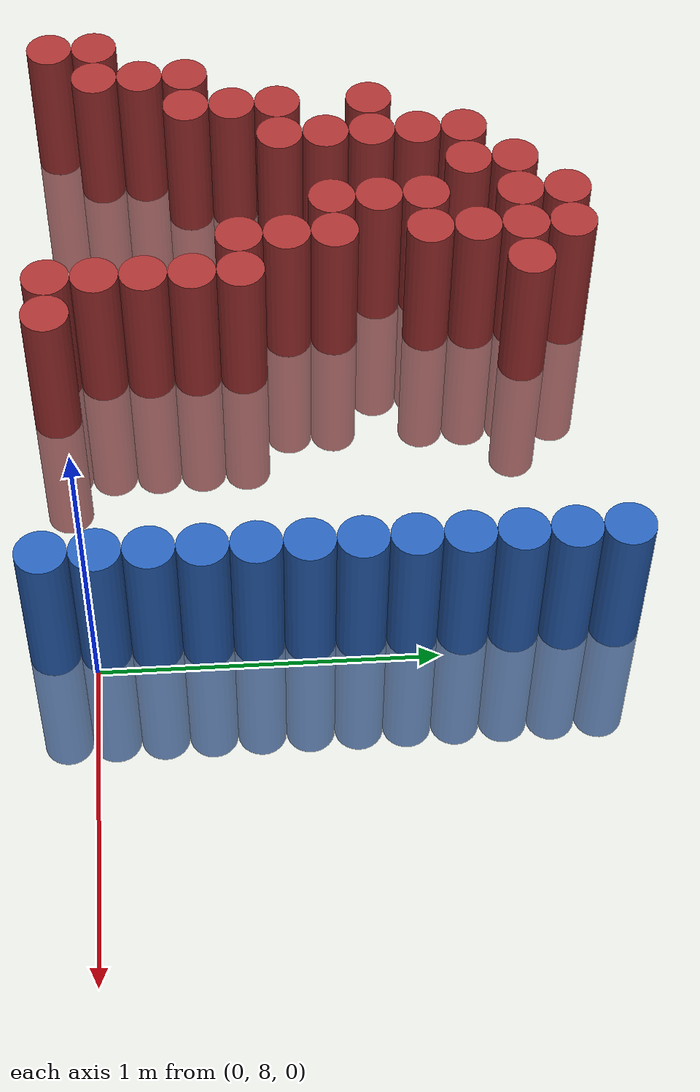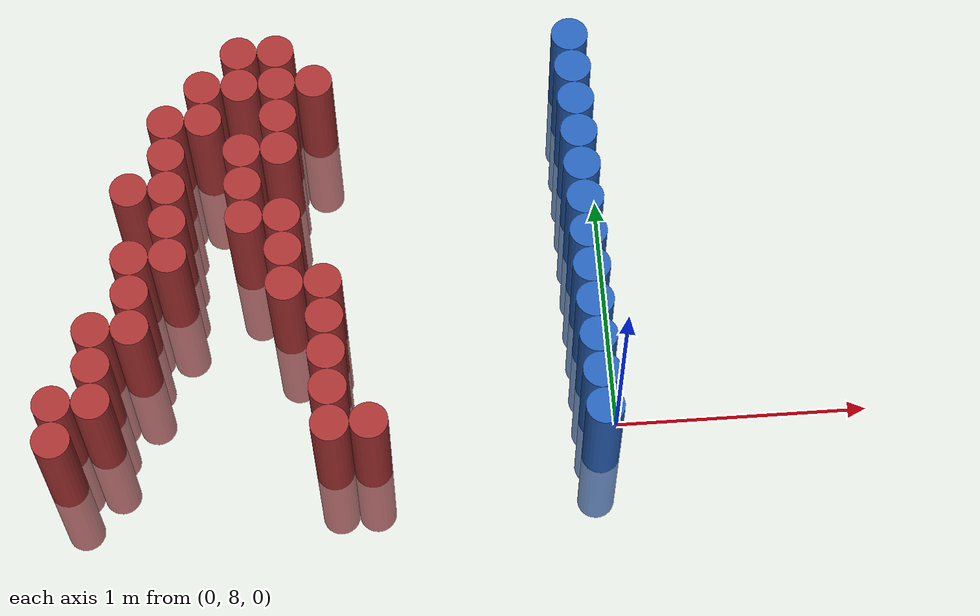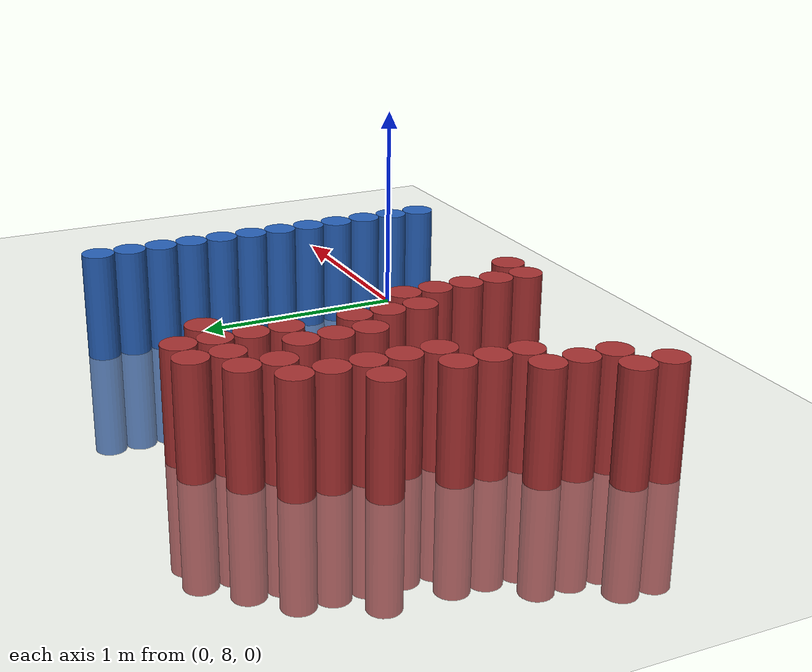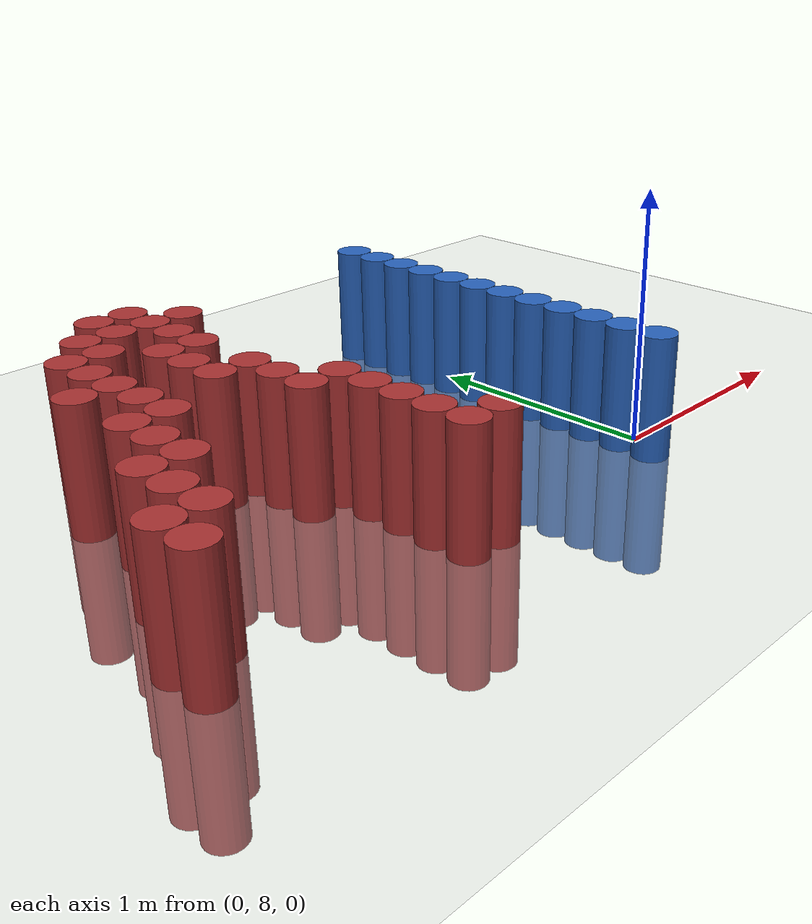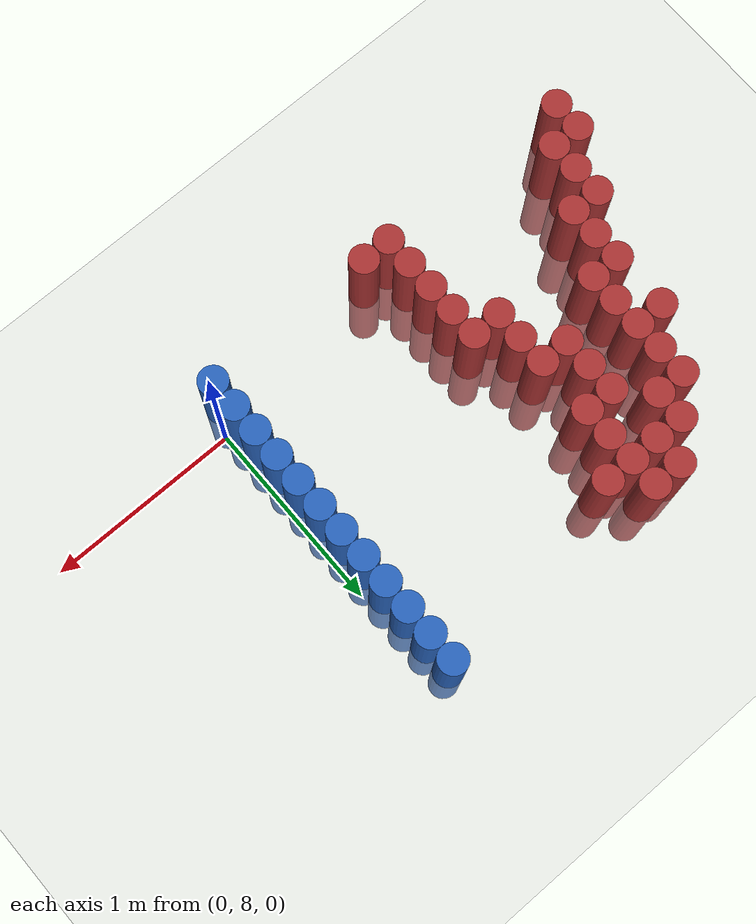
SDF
<sdf version="1.6">
 <world name="default">
  <model name="ground_plane">
   <static>1</static>
   <link name="link">
    <collision name="collision">
     <geometry><plane><normal>0 0 1</normal><size>100 100</size></plane></geometry>
     <surface><friction><ode><mu>100</mu><mu2>50</mu2></ode></friction></surface>
    </collision>
    <visual name="visual">
     <cast_shadows>0</cast_shadows>
     <geometry><plane><normal>0 0 1</normal><size>100 100</size></plane></geometry>
     <material>
      <script><uri>file://media/materials/scripts/gazebo.material</uri><name>Gazebo/Grey</name></script>
     </material>
    </visual>
   </link>
  </model>
  <model name="unit_cylinder_167">
   <static>1</static>
   <pose>-2.175000 7.875000 0.000000 0.000000 0.000000 0.000000</pose>
   <link name="link">
    <inertial>
     <mass>1</mass>
     <inertia><ixx>0.145833</ixx><ixy>0</ixy><ixz>0</ixz><iyy>0.145833</iyy><iyz>0</iyz><izz>0.125</izz></inertia>
    </inertial>
    <collision name="collision">
     <geometry><cylinder><radius>0.075000</radius><length>1</length></cylinder></geometry>
    </collision>
    <visual name="visual">
     <geometry><cylinder><radius>0.075000</radius><length>1</length></cylinder></geometry>
     <material>
      <ambient>0.648000 0.192000 0.192000 1</ambient>
      <diffuse>0.648000 0.192000 0.192000 1</diffuse>
     </material>
     <material>
      <script><name>Gazebo/Grey</name><uri>file://media/materials/scripts/gazebo.material</uri></script>
     </material>
    </visual>
   </link>
  </model>
  <model name="unit_cylinder_168">
   <static>1</static>
   <pose>-2.175000 8.025000 0.000000 0.000000 0.000000 0.000000</pose>
   <link name="link">
    <inertial>
     <mass>1</mass>
     <inertia><ixx>0.145833</ixx><ixy>0</ixy><ixz>0</ixz><iyy>0.145833</iyy><iyz>0</iyz><izz>0.125</izz></inertia>
    </inertial>
    <collision name="collision">
     <geometry><cylinder><radius>0.075000</radius><length>1</length></cylinder></geometry>
    </collision>
    <visual name="visual">
     <geometry><cylinder><radius>0.075000</radius><length>1</length></cylinder></geometry>
     <material>
      <ambient>0.648000 0.192000 0.192000 1</ambient>
      <diffuse>0.648000 0.192000 0.192000 1</diffuse>
     </material>
     <material>
      <script><name>Gazebo/Grey</name><uri>file://media/materials/scripts/gazebo.material</uri></script>
     </material>
    </visual>
   </link>
  </model>
  <model name="unit_cylinder_171">
   <static>1</static>
   <pose>-2.025000 8.025000 0.000000 0.000000 0.000000 0.000000</pose>
   <link name="link">
    <inertial>
     <mass>1</mass>
     <inertia><ixx>0.145833</ixx><ixy>0</ixy><ixz>0</ixz><iyy>0.145833</iyy><iyz>0</iyz><izz>0.125</izz></inertia>
    </inertial>
    <collision name="collision">
     <geometry><cylinder><radius>0.075000</radius><length>1</length></cylinder></geometry>
    </collision>
    <visual name="visual">
     <geometry><cylinder><radius>0.075000</radius><length>1</length></cylinder></geometry>
     <material>
      <ambient>0.648000 0.192000 0.192000 1</ambient>
      <diffuse>0.648000 0.192000 0.192000 1</diffuse>
     </material>
     <material>
      <script><name>Gazebo/Grey</name><uri>file://media/materials/scripts/gazebo.material</uri></script>
     </material>
    </visual>
   </link>
  </model>
  <model name="unit_cylinder_172">
   <static>1</static>
   <pose>-2.025000 8.175000 0.000000 0.000000 0.000000 0.000000</pose>
   <link name="link">
    <inertial>
     <mass>1</mass>
     <inertia><ixx>0.145833</ixx><ixy>0</ixy><ixz>0</ixz><iyy>0.145833</iyy><iyz>0</iyz><izz>0.125</izz></inertia>
    </inertial>
    <collision name="collision">
     <geometry><cylinder><radius>0.075000</radius><length>1</length></cylinder></geometry>
    </collision>
    <visual name="visual">
     <geometry><cylinder><radius>0.075000</radius><length>1</length></cylinder></geometry>
     <material>
      <ambient>0.648000 0.192000 0.192000 1</ambient>
      <diffuse>0.648000 0.192000 0.192000 1</diffuse>
     </material>
     <material>
      <script><name>Gazebo/Grey</name><uri>file://media/materials/scripts/gazebo.material</uri></script>
     </material>
    </visual>
   </link>
  </model>
  <model name="unit_cylinder_173">
   <static>1</static>
   <pose>-2.025000 8.325000 0.000000 0.000000 0.000000 0.000000</pose>
   <link name="link">
    <inertial>
     <mass>1</mass>
     <inertia><ixx>0.145833</ixx><ixy>0</ixy><ixz>0</ixz><iyy>0.145833</iyy><iyz>0</iyz><izz>0.125</izz></inertia>
    </inertial>
    <collision name="collision">
     <geometry><cylinder><radius>0.075000</radius><length>1</length></cylinder></geometry>
    </collision>
    <visual name="visual">
     <geometry><cylinder><radius>0.075000</radius><length>1</length></cylinder></geometry>
     <material>
      <ambient>0.648000 0.192000 0.192000 1</ambient>
      <diffuse>0.648000 0.192000 0.192000 1</diffuse>
     </material>
     <material>
      <script><name>Gazebo/Grey</name><uri>file://media/materials/scripts/gazebo.material</uri></script>
     </material>
    </visual>
   </link>
  </model>
  <model name="unit_cylinder_175">
   <static>1</static>
   <pose>-1.875000 8.325000 0.000000 0.000000 0.000000 0.000000</pose>
   <link name="link">
    <inertial>
     <mass>1</mass>
     <inertia><ixx>0.145833</ixx><ixy>0</ixy><ixz>0</ixz><iyy>0.145833</iyy><iyz>0</iyz><izz>0.125</izz></inertia>
    </inertial>
    <collision name="collision">
     <geometry><cylinder><radius>0.075000</radius><length>1</length></cylinder></geometry>
    </collision>
    <visual name="visual">
     <geometry><cylinder><radius>0.075000</radius><length>1</length></cylinder></geometry>
     <material>
      <ambient>0.648000 0.192000 0.192000 1</ambient>
      <diffuse>0.648000 0.192000 0.192000 1</diffuse>
     </material>
     <material>
      <script><name>Gazebo/Grey</name><uri>file://media/materials/scripts/gazebo.material</uri></script>
     </material>
    </visual>
   </link>
  </model>
  <model name="unit_cylinder_176">
   <static>1</static>
   <pose>-1.875000 8.475000 0.000000 0.000000 0.000000 0.000000</pose>
   <link name="link">
    <inertial>
     <mass>1</mass>
     <inertia><ixx>0.145833</ixx><ixy>0</ixy><ixz>0</ixz><iyy>0.145833</iyy><iyz>0</iyz><izz>0.125</izz></inertia>
    </inertial>
    <collision name="collision">
     <geometry><cylinder><radius>0.075000</radius><length>1</length></cylinder></geometry>
    </collision>
    <visual name="visual">
     <geometry><cylinder><radius>0.075000</radius><length>1</length></cylinder></geometry>
     <material>
      <ambient>0.648000 0.192000 0.192000 1</ambient>
      <diffuse>0.648000 0.192000 0.192000 1</diffuse>
     </material>
     <material>
      <script><name>Gazebo/Grey</name><uri>file://media/materials/scripts/gazebo.material</uri></script>
     </material>
    </visual>
   </link>
  </model>
  <model name="unit_cylinder_177">
   <static>1</static>
   <pose>-1.875000 8.625000 0.000000 0.000000 0.000000 0.000000</pose>
   <link name="link">
    <inertial>
     <mass>1</mass>
     <inertia><ixx>0.145833</ixx><ixy>0</ixy><ixz>0</ixz><iyy>0.145833</iyy><iyz>0</iyz><izz>0.125</izz></inertia>
    </inertial>
    <collision name="collision">
     <geometry><cylinder><radius>0.075000</radius><length>1</length></cylinder></geometry>
    </collision>
    <visual name="visual">
     <geometry><cylinder><radius>0.075000</radius><length>1</length></cylinder></geometry>
     <material>
      <ambient>0.648000 0.192000 0.192000 1</ambient>
      <diffuse>0.648000 0.192000 0.192000 1</diffuse>
     </material>
     <material>
      <script><name>Gazebo/Grey</name><uri>file://media/materials/scripts/gazebo.material</uri></script>
     </material>
    </visual>
   </link>
  </model>
  <model name="unit_cylinder_178">
   <static>1</static>
   <pose>-1.875000 8.925000 0.000000 0.000000 0.000000 0.000000</pose>
   <link name="link">
    <inertial>
     <mass>1</mass>
     <inertia><ixx>0.145833</ixx><ixy>0</ixy><ixz>0</ixz><iyy>0.145833</iyy><iyz>0</iyz><izz>0.125</izz></inertia>
    </inertial>
    <collision name="collision">
     <geometry><cylinder><radius>0.075000</radius><length>1</length></cylinder></geometry>
    </collision>
    <visual name="visual">
     <geometry><cylinder><radius>0.075000</radius><length>1</length></cylinder></geometry>
     <material>
      <ambient>0.648000 0.192000 0.192000 1</ambient>
      <diffuse>0.648000 0.192000 0.192000 1</diffuse>
     </material>
     <material>
      <script><name>Gazebo/Grey</name><uri>file://media/materials/scripts/gazebo.material</uri></script>
     </material>
    </visual>
   </link>
  </model>
  <model name="unit_cylinder_181">
   <static>1</static>
   <pose>-1.725000 8.625000 0.000000 0.000000 0.000000 0.000000</pose>
   <link name="link">
    <inertial>
     <mass>1</mass>
     <inertia><ixx>0.145833</ixx><ixy>0</ixy><ixz>0</ixz><iyy>0.145833</iyy><iyz>0</iyz><izz>0.125</izz></inertia>
    </inertial>
    <collision name="collision">
     <geometry><cylinder><radius>0.075000</radius><length>1</length></cylinder></geometry>
    </collision>
    <visual name="visual">
     <geometry><cylinder><radius>0.075000</radius><length>1</length></cylinder></geometry>
     <material>
      <ambient>0.648000 0.192000 0.192000 1</ambient>
      <diffuse>0.648000 0.192000 0.192000 1</diffuse>
     </material>
     <material>
      <script><name>Gazebo/Grey</name><uri>file://media/materials/scripts/gazebo.material</uri></script>
     </material>
    </visual>
   </link>
  </model>
  <model name="unit_cylinder_182">
   <static>1</static>
   <pose>-1.725000 8.775000 0.000000 0.000000 0.000000 0.000000</pose>
   <link name="link">
    <inertial>
     <mass>1</mass>
     <inertia><ixx>0.145833</ixx><ixy>0</ixy><ixz>0</ixz><iyy>0.145833</iyy><iyz>0</iyz><izz>0.125</izz></inertia>
    </inertial>
    <collision name="collision">
     <geometry><cylinder><radius>0.075000</radius><length>1</length></cylinder></geometry>
    </collision>
    <visual name="visual">
     <geometry><cylinder><radius>0.075000</radius><length>1</length></cylinder></geometry>
     <material>
      <ambient>0.648000 0.192000 0.192000 1</ambient>
      <diffuse>0.648000 0.192000 0.192000 1</diffuse>
     </material>
     <material>
      <script><name>Gazebo/Grey</name><uri>file://media/materials/scripts/gazebo.material</uri></script>
     </material>
    </visual>
   </link>
  </model>
  <model name="unit_cylinder_183">
   <static>1</static>
   <pose>-1.725000 8.925000 0.000000 0.000000 0.000000 0.000000</pose>
   <link name="link">
    <inertial>
     <mass>1</mass>
     <inertia><ixx>0.145833</ixx><ixy>0</ixy><ixz>0</ixz><iyy>0.145833</iyy><iyz>0</iyz><izz>0.125</izz></inertia>
    </inertial>
    <collision name="collision">
     <geometry><cylinder><radius>0.075000</radius><length>1</length></cylinder></geometry>
    </collision>
    <visual name="visual">
     <geometry><cylinder><radius>0.075000</radius><length>1</length></cylinder></geometry>
     <material>
      <ambient>0.648000 0.192000 0.192000 1</ambient>
      <diffuse>0.648000 0.192000 0.192000 1</diffuse>
     </material>
     <material>
      <script><name>Gazebo/Grey</name><uri>file://media/materials/scripts/gazebo.material</uri></script>
     </material>
    </visual>
   </link>
  </model>
  <model name="unit_cylinder_184">
   <static>1</static>
   <pose>-1.725000 9.075000 0.000000 0.000000 0.000000 0.000000</pose>
   <link name="link">
    <inertial>
     <mass>1</mass>
     <inertia><ixx>0.145833</ixx><ixy>0</ixy><ixz>0</ixz><iyy>0.145833</iyy><iyz>0</iyz><izz>0.125</izz></inertia>
    </inertial>
    <collision name="collision">
     <geometry><cylinder><radius>0.075000</radius><length>1</length></cylinder></geometry>
    </collision>
    <visual name="visual">
     <geometry><cylinder><radius>0.075000</radius><length>1</length></cylinder></geometry>
     <material>
      <ambient>0.648000 0.192000 0.192000 1</ambient>
      <diffuse>0.648000 0.192000 0.192000 1</diffuse>
     </material>
     <material>
      <script><name>Gazebo/Grey</name><uri>file://media/materials/scripts/gazebo.material</uri></script>
     </material>
    </visual>
   </link>
  </model>
  <model name="unit_cylinder_185">
   <static>1</static>
   <pose>-1.725000 9.225000 0.000000 0.000000 0.000000 0.000000</pose>
   <link name="link">
    <inertial>
     <mass>1</mass>
     <inertia><ixx>0.145833</ixx><ixy>0</ixy><ixz>0</ixz><iyy>0.145833</iyy><iyz>0</iyz><izz>0.125</izz></inertia>
    </inertial>
    <collision name="collision">
     <geometry><cylinder><radius>0.075000</radius><length>1</length></cylinder></geometry>
    </collision>
    <visual name="visual">
     <geometry><cylinder><radius>0.075000</radius><length>1</length></cylinder></geometry>
     <material>
      <ambient>0.648000 0.192000 0.192000 1</ambient>
      <diffuse>0.648000 0.192000 0.192000 1</diffuse>
     </material>
     <material>
      <script><name>Gazebo/Grey</name><uri>file://media/materials/scripts/gazebo.material</uri></script>
     </material>
    </visual>
   </link>
  </model>
  <model name="unit_cylinder_187">
   <static>1</static>
   <pose>-1.575000 9.225000 0.000000 0.000000 0.000000 0.000000</pose>
   <link name="link">
    <inertial>
     <mass>1</mass>
     <inertia><ixx>0.145833</ixx><ixy>0</ixy><ixz>0</ixz><iyy>0.145833</iyy><iyz>0</iyz><izz>0.125</izz></inertia>
    </inertial>
    <collision name="collision">
     <geometry><cylinder><radius>0.075000</radius><length>1</length></cylinder></geometry>
    </collision>
    <visual name="visual">
     <geometry><cylinder><radius>0.075000</radius><length>1</length></cylinder></geometry>
     <material>
      <ambient>0.648000 0.192000 0.192000 1</ambient>
      <diffuse>0.648000 0.192000 0.192000 1</diffuse>
     </material>
     <material>
      <script><name>Gazebo/Grey</name><uri>file://media/materials/scripts/gazebo.material</uri></script>
     </material>
    </visual>
   </link>
  </model>
  <model name="unit_cylinder_188">
   <static>1</static>
   <pose>-1.575000 9.375000 0.000000 0.000000 0.000000 0.000000</pose>
   <link name="link">
    <inertial>
     <mass>1</mass>
     <inertia><ixx>0.145833</ixx><ixy>0</ixy><ixz>0</ixz><iyy>0.145833</iyy><iyz>0</iyz><izz>0.125</izz></inertia>
    </inertial>
    <collision name="collision">
     <geometry><cylinder><radius>0.075000</radius><length>1</length></cylinder></geometry>
    </collision>
    <visual name="visual">
     <geometry><cylinder><radius>0.075000</radius><length>1</length></cylinder></geometry>
     <material>
      <ambient>0.648000 0.192000 0.192000 1</ambient>
      <diffuse>0.648000 0.192000 0.192000 1</diffuse>
     </material>
     <material>
      <script><name>Gazebo/Grey</name><uri>file://media/materials/scripts/gazebo.material</uri></script>
     </material>
    </visual>
   </link>
  </model>
  <model name="unit_cylinder_190">
   <static>1</static>
   <pose>-1.425000 8.775000 0.000000 0.000000 0.000000 0.000000</pose>
   <link name="link">
    <inertial>
     <mass>1</mass>
     <inertia><ixx>0.145833</ixx><ixy>0</ixy><ixz>0</ixz><iyy>0.145833</iyy><iyz>0</iyz><izz>0.125</izz></inertia>
    </inertial>
    <collision name="collision">
     <geometry><cylinder><radius>0.075000</radius><length>1</length></cylinder></geometry>
    </collision>
    <visual name="visual">
     <geometry><cylinder><radius>0.075000</radius><length>1</length></cylinder></geometry>
     <material>
      <ambient>0.648000 0.192000 0.192000 1</ambient>
      <diffuse>0.648000 0.192000 0.192000 1</diffuse>
     </material>
     <material>
      <script><name>Gazebo/Grey</name><uri>file://media/materials/scripts/gazebo.material</uri></script>
     </material>
    </visual>
   </link>
  </model>
  <model name="unit_cylinder_191">
   <static>1</static>
   <pose>-1.425000 8.925000 0.000000 0.000000 0.000000 0.000000</pose>
   <link name="link">
    <inertial>
     <mass>1</mass>
     <inertia><ixx>0.145833</ixx><ixy>0</ixy><ixz>0</ixz><iyy>0.145833</iyy><iyz>0</iyz><izz>0.125</izz></inertia>
    </inertial>
    <collision name="collision">
     <geometry><cylinder><radius>0.075000</radius><length>1</length></cylinder></geometry>
    </collision>
    <visual name="visual">
     <geometry><cylinder><radius>0.075000</radius><length>1</length></cylinder></geometry>
     <material>
      <ambient>0.648000 0.192000 0.192000 1</ambient>
      <diffuse>0.648000 0.192000 0.192000 1</diffuse>
     </material>
     <material>
      <script><name>Gazebo/Grey</name><uri>file://media/materials/scripts/gazebo.material</uri></script>
     </material>
    </visual>
   </link>
  </model>
  <model name="unit_cylinder_192">
   <static>1</static>
   <pose>-1.425000 9.075000 0.000000 0.000000 0.000000 0.000000</pose>
   <link name="link">
    <inertial>
     <mass>1</mass>
     <inertia><ixx>0.145833</ixx><ixy>0</ixy><ixz>0</ixz><iyy>0.145833</iyy><iyz>0</iyz><izz>0.125</izz></inertia>
    </inertial>
    <collision name="collision">
     <geometry><cylinder><radius>0.075000</radius><length>1</length></cylinder></geometry>
    </collision>
    <visual name="visual">
     <geometry><cylinder><radius>0.075000</radius><length>1</length></cylinder></geometry>
     <material>
      <ambient>0.648000 0.192000 0.192000 1</ambient>
      <diffuse>0.648000 0.192000 0.192000 1</diffuse>
     </material>
     <material>
      <script><name>Gazebo/Grey</name><uri>file://media/materials/scripts/gazebo.material</uri></script>
     </material>
    </visual>
   </link>
  </model>
  <model name="unit_cylinder_193">
   <static>1</static>
   <pose>-1.425000 9.375000 0.000000 0.000000 0.000000 0.000000</pose>
   <link name="link">
    <inertial>
     <mass>1</mass>
     <inertia><ixx>0.145833</ixx><ixy>0</ixy><ixz>0</ixz><iyy>0.145833</iyy><iyz>0</iyz><izz>0.125</izz></inertia>
    </inertial>
    <collision name="collision">
     <geometry><cylinder><radius>0.075000</radius><length>1</length></cylinder></geometry>
    </collision>
    <visual name="visual">
     <geometry><cylinder><radius>0.075000</radius><length>1</length></cylinder></geometry>
     <material>
      <ambient>0.648000 0.192000 0.192000 1</ambient>
      <diffuse>0.648000 0.192000 0.192000 1</diffuse>
     </material>
     <material>
      <script><name>Gazebo/Grey</name><uri>file://media/materials/scripts/gazebo.material</uri></script>
     </material>
    </visual>
   </link>
  </model>
  <model name="unit_cylinder_194">
   <static>1</static>
   <pose>-1.425000 9.525000 0.000000 0.000000 0.000000 0.000000</pose>
   <link name="link">
    <inertial>
     <mass>1</mass>
     <inertia><ixx>0.145833</ixx><ixy>0</ixy><ixz>0</ixz><iyy>0.145833</iyy><iyz>0</iyz><izz>0.125</izz></inertia>
    </inertial>
    <collision name="collision">
     <geometry><cylinder><radius>0.075000</radius><length>1</length></cylinder></geometry>
    </collision>
    <visual name="visual">
     <geometry><cylinder><radius>0.075000</radius><length>1</length></cylinder></geometry>
     <material>
      <ambient>0.648000 0.192000 0.192000 1</ambient>
      <diffuse>0.648000 0.192000 0.192000 1</diffuse>
     </material>
     <material>
      <script><name>Gazebo/Grey</name><uri>file://media/materials/scripts/gazebo.material</uri></script>
     </material>
    </visual>
   </link>
  </model>
  <model name="unit_cylinder_197">
   <static>1</static>
   <pose>-1.275000 8.475000 0.000000 0.000000 0.000000 0.000000</pose>
   <link name="link">
    <inertial>
     <mass>1</mass>
     <inertia><ixx>0.145833</ixx><ixy>0</ixy><ixz>0</ixz><iyy>0.145833</iyy><iyz>0</iyz><izz>0.125</izz></inertia>
    </inertial>
    <collision name="collision">
     <geometry><cylinder><radius>0.075000</radius><length>1</length></cylinder></geometry>
    </collision>
    <visual name="visual">
     <geometry><cylinder><radius>0.075000</radius><length>1</length></cylinder></geometry>
     <material>
      <ambient>0.648000 0.192000 0.192000 1</ambient>
      <diffuse>0.648000 0.192000 0.192000 1</diffuse>
     </material>
     <material>
      <script><name>Gazebo/Grey</name><uri>file://media/materials/scripts/gazebo.material</uri></script>
     </material>
    </visual>
   </link>
  </model>
  <model name="unit_cylinder_198">
   <static>1</static>
   <pose>-1.275000 8.625000 0.000000 0.000000 0.000000 0.000000</pose>
   <link name="link">
    <inertial>
     <mass>1</mass>
     <inertia><ixx>0.145833</ixx><ixy>0</ixy><ixz>0</ixz><iyy>0.145833</iyy><iyz>0</iyz><izz>0.125</izz></inertia>
    </inertial>
    <collision name="collision">
     <geometry><cylinder><radius>0.075000</radius><length>1</length></cylinder></geometry>
    </collision>
    <visual name="visual">
     <geometry><cylinder><radius>0.075000</radius><length>1</length></cylinder></geometry>
     <material>
      <ambient>0.648000 0.192000 0.192000 1</ambient>
      <diffuse>0.648000 0.192000 0.192000 1</diffuse>
     </material>
     <material>
      <script><name>Gazebo/Grey</name><uri>file://media/materials/scripts/gazebo.material</uri></script>
     </material>
    </visual>
   </link>
  </model>
  <model name="unit_cylinder_199">
   <static>1</static>
   <pose>-1.275000 8.775000 0.000000 0.000000 0.000000 0.000000</pose>
   <link name="link">
    <inertial>
     <mass>1</mass>
     <inertia><ixx>0.145833</ixx><ixy>0</ixy><ixz>0</ixz><iyy>0.145833</iyy><iyz>0</iyz><izz>0.125</izz></inertia>
    </inertial>
    <collision name="collision">
     <geometry><cylinder><radius>0.075000</radius><length>1</length></cylinder></geometry>
    </collision>
    <visual name="visual">
     <geometry><cylinder><radius>0.075000</radius><length>1</length></cylinder></geometry>
     <material>
      <ambient>0.648000 0.192000 0.192000 1</ambient>
      <diffuse>0.648000 0.192000 0.192000 1</diffuse>
     </material>
     <material>
      <script><name>Gazebo/Grey</name><uri>file://media/materials/scripts/gazebo.material</uri></script>
     </material>
    </visual>
   </link>
  </model>
  <model name="unit_cylinder_200">
   <static>1</static>
   <pose>-1.275000 9.075000 0.000000 0.000000 0.000000 0.000000</pose>
   <link name="link">
    <inertial>
     <mass>1</mass>
     <inertia><ixx>0.145833</ixx><ixy>0</ixy><ixz>0</ixz><iyy>0.145833</iyy><iyz>0</iyz><izz>0.125</izz></inertia>
    </inertial>
    <collision name="collision">
     <geometry><cylinder><radius>0.075000</radius><length>1</length></cylinder></geometry>
    </collision>
    <visual name="visual">
     <geometry><cylinder><radius>0.075000</radius><length>1</length></cylinder></geometry>
     <material>
      <ambient>0.648000 0.192000 0.192000 1</ambient>
      <diffuse>0.648000 0.192000 0.192000 1</diffuse>
     </material>
     <material>
      <script><name>Gazebo/Grey</name><uri>file://media/materials/scripts/gazebo.material</uri></script>
     </material>
    </visual>
   </link>
  </model>
  <model name="unit_cylinder_201">
   <static>1</static>
   <pose>-1.275000 9.225000 0.000000 0.000000 0.000000 0.000000</pose>
   <link name="link">
    <inertial>
     <mass>1</mass>
     <inertia><ixx>0.145833</ixx><ixy>0</ixy><ixz>0</ixz><iyy>0.145833</iyy><iyz>0</iyz><izz>0.125</izz></inertia>
    </inertial>
    <collision name="collision">
     <geometry><cylinder><radius>0.075000</radius><length>1</length></cylinder></geometry>
    </collision>
    <visual name="visual">
     <geometry><cylinder><radius>0.075000</radius><length>1</length></cylinder></geometry>
     <material>
      <ambient>0.648000 0.192000 0.192000 1</ambient>
      <diffuse>0.648000 0.192000 0.192000 1</diffuse>
     </material>
     <material>
      <script><name>Gazebo/Grey</name><uri>file://media/materials/scripts/gazebo.material</uri></script>
     </material>
    </visual>
   </link>
  </model>
  <model name="unit_cylinder_202">
   <static>1</static>
   <pose>-1.275000 9.375000 0.000000 0.000000 0.000000 0.000000</pose>
   <link name="link">
    <inertial>
     <mass>1</mass>
     <inertia><ixx>0.145833</ixx><ixy>0</ixy><ixz>0</ixz><iyy>0.145833</iyy><iyz>0</iyz><izz>0.125</izz></inertia>
    </inertial>
    <collision name="collision">
     <geometry><cylinder><radius>0.075000</radius><length>1</length></cylinder></geometry>
    </collision>
    <visual name="visual">
     <geometry><cylinder><radius>0.075000</radius><length>1</length></cylinder></geometry>
     <material>
      <ambient>0.648000 0.192000 0.192000 1</ambient>
      <diffuse>0.648000 0.192000 0.192000 1</diffuse>
     </material>
     <material>
      <script><name>Gazebo/Grey</name><uri>file://media/materials/scripts/gazebo.material</uri></script>
     </material>
    </visual>
   </link>
  </model>
  <model name="unit_cylinder_203">
   <static>1</static>
   <pose>-1.275000 9.525000 0.000000 0.000000 0.000000 0.000000</pose>
   <link name="link">
    <inertial>
     <mass>1</mass>
     <inertia><ixx>0.145833</ixx><ixy>0</ixy><ixz>0</ixz><iyy>0.145833</iyy><iyz>0</iyz><izz>0.125</izz></inertia>
    </inertial>
    <collision name="collision">
     <geometry><cylinder><radius>0.075000</radius><length>1</length></cylinder></geometry>
    </collision>
    <visual name="visual">
     <geometry><cylinder><radius>0.075000</radius><length>1</length></cylinder></geometry>
     <material>
      <ambient>0.648000 0.192000 0.192000 1</ambient>
      <diffuse>0.648000 0.192000 0.192000 1</diffuse>
     </material>
     <material>
      <script><name>Gazebo/Grey</name><uri>file://media/materials/scripts/gazebo.material</uri></script>
     </material>
    </visual>
   </link>
  </model>
  <model name="unit_cylinder_208">
   <static>1</static>
   <pose>-1.125000 7.875000 0.000000 0.000000 0.000000 0.000000</pose>
   <link name="link">
    <inertial>
     <mass>1</mass>
     <inertia><ixx>0.145833</ixx><ixy>0</ixy><ixz>0</ixz><iyy>0.145833</iyy><iyz>0</iyz><izz>0.125</izz></inertia>
    </inertial>
    <collision name="collision">
     <geometry><cylinder><radius>0.075000</radius><length>1</length></cylinder></geometry>
    </collision>
    <visual name="visual">
     <geometry><cylinder><radius>0.075000</radius><length>1</length></cylinder></geometry>
     <material>
      <ambient>0.648000 0.192000 0.192000 1</ambient>
      <diffuse>0.648000 0.192000 0.192000 1</diffuse>
     </material>
     <material>
      <script><name>Gazebo/Grey</name><uri>file://media/materials/scripts/gazebo.material</uri></script>
     </material>
    </visual>
   </link>
  </model>
  <model name="unit_cylinder_209">
   <static>1</static>
   <pose>-1.125000 8.025000 0.000000 0.000000 0.000000 0.000000</pose>
   <link name="link">
    <inertial>
     <mass>1</mass>
     <inertia><ixx>0.145833</ixx><ixy>0</ixy><ixz>0</ixz><iyy>0.145833</iyy><iyz>0</iyz><izz>0.125</izz></inertia>
    </inertial>
    <collision name="collision">
     <geometry><cylinder><radius>0.075000</radius><length>1</length></cylinder></geometry>
    </collision>
    <visual name="visual">
     <geometry><cylinder><radius>0.075000</radius><length>1</length></cylinder></geometry>
     <material>
      <ambient>0.648000 0.192000 0.192000 1</ambient>
      <diffuse>0.648000 0.192000 0.192000 1</diffuse>
     </material>
     <material>
      <script><name>Gazebo/Grey</name><uri>file://media/materials/scripts/gazebo.material</uri></script>
     </material>
    </visual>
   </link>
  </model>
  <model name="unit_cylinder_210">
   <static>1</static>
   <pose>-1.125000 8.175000 0.000000 0.000000 0.000000 0.000000</pose>
   <link name="link">
    <inertial>
     <mass>1</mass>
     <inertia><ixx>0.145833</ixx><ixy>0</ixy><ixz>0</ixz><iyy>0.145833</iyy><iyz>0</iyz><izz>0.125</izz></inertia>
    </inertial>
    <collision name="collision">
     <geometry><cylinder><radius>0.075000</radius><length>1</length></cylinder></geometry>
    </collision>
    <visual name="visual">
     <geometry><cylinder><radius>0.075000</radius><length>1</length></cylinder></geometry>
     <material>
      <ambient>0.648000 0.192000 0.192000 1</ambient>
      <diffuse>0.648000 0.192000 0.192000 1</diffuse>
     </material>
     <material>
      <script><name>Gazebo/Grey</name><uri>file://media/materials/scripts/gazebo.material</uri></script>
     </material>
    </visual>
   </link>
  </model>
  <model name="unit_cylinder_211">
   <static>1</static>
   <pose>-1.125000 8.325000 0.000000 0.000000 0.000000 0.000000</pose>
   <link name="link">
    <inertial>
     <mass>1</mass>
     <inertia><ixx>0.145833</ixx><ixy>0</ixy><ixz>0</ixz><iyy>0.145833</iyy><iyz>0</iyz><izz>0.125</izz></inertia>
    </inertial>
    <collision name="collision">
     <geometry><cylinder><radius>0.075000</radius><length>1</length></cylinder></geometry>
    </collision>
    <visual name="visual">
     <geometry><cylinder><radius>0.075000</radius><length>1</length></cylinder></geometry>
     <material>
      <ambient>0.648000 0.192000 0.192000 1</ambient>
      <diffuse>0.648000 0.192000 0.192000 1</diffuse>
     </material>
     <material>
      <script><name>Gazebo/Grey</name><uri>file://media/materials/scripts/gazebo.material</uri></script>
     </material>
    </visual>
   </link>
  </model>
  <model name="unit_cylinder_212">
   <static>1</static>
   <pose>-1.125000 8.475000 0.000000 0.000000 0.000000 0.000000</pose>
   <link name="link">
    <inertial>
     <mass>1</mass>
     <inertia><ixx>0.145833</ixx><ixy>0</ixy><ixz>0</ixz><iyy>0.145833</iyy><iyz>0</iyz><izz>0.125</izz></inertia>
    </inertial>
    <collision name="collision">
     <geometry><cylinder><radius>0.075000</radius><length>1</length></cylinder></geometry>
    </collision>
    <visual name="visual">
     <geometry><cylinder><radius>0.075000</radius><length>1</length></cylinder></geometry>
     <material>
      <ambient>0.648000 0.192000 0.192000 1</ambient>
      <diffuse>0.648000 0.192000 0.192000 1</diffuse>
     </material>
     <material>
      <script><name>Gazebo/Grey</name><uri>file://media/materials/scripts/gazebo.material</uri></script>
     </material>
    </visual>
   </link>
  </model>
  <model name="unit_cylinder_213">
   <static>1</static>
   <pose>-1.125000 9.375000 0.000000 0.000000 0.000000 0.000000</pose>
   <link name="link">
    <inertial>
     <mass>1</mass>
     <inertia><ixx>0.145833</ixx><ixy>0</ixy><ixz>0</ixz><iyy>0.145833</iyy><iyz>0</iyz><izz>0.125</izz></inertia>
    </inertial>
    <collision name="collision">
     <geometry><cylinder><radius>0.075000</radius><length>1</length></cylinder></geometry>
    </collision>
    <visual name="visual">
     <geometry><cylinder><radius>0.075000</radius><length>1</length></cylinder></geometry>
     <material>
      <ambient>0.648000 0.192000 0.192000 1</ambient>
      <diffuse>0.648000 0.192000 0.192000 1</diffuse>
     </material>
     <material>
      <script><name>Gazebo/Grey</name><uri>file://media/materials/scripts/gazebo.material</uri></script>
     </material>
    </visual>
   </link>
  </model>
  <model name="unit_cylinder_216">
   <static>1</static>
   <pose>-0.975000 7.875000 0.000000 0.000000 0.000000 0.000000</pose>
   <link name="link">
    <inertial>
     <mass>1</mass>
     <inertia><ixx>0.145833</ixx><ixy>0</ixy><ixz>0</ixz><iyy>0.145833</iyy><iyz>0</iyz><izz>0.125</izz></inertia>
    </inertial>
    <collision name="collision">
     <geometry><cylinder><radius>0.075000</radius><length>1</length></cylinder></geometry>
    </collision>
    <visual name="visual">
     <geometry><cylinder><radius>0.075000</radius><length>1</length></cylinder></geometry>
     <material>
      <ambient>0.648000 0.192000 0.192000 1</ambient>
      <diffuse>0.648000 0.192000 0.192000 1</diffuse>
     </material>
     <material>
      <script><name>Gazebo/Grey</name><uri>file://media/materials/scripts/gazebo.material</uri></script>
     </material>
    </visual>
   </link>
  </model>
  <model name="unit_cylinder_266">
   <static>1</static>
   <pose>-0.075000 7.875000 0.000000 0.000000 0.000000 0.000000</pose>
   <link name="link">
    <inertial>
     <mass>1</mass>
     <inertia><ixx>0.145833</ixx><ixy>0</ixy><ixz>0</ixz><iyy>0.145833</iyy><iyz>0</iyz><izz>0.125</izz></inertia>
    </inertial>
    <collision name="collision">
     <geometry><cylinder><radius>0.075000</radius><length>1</length></cylinder></geometry>
    </collision>
    <visual name="visual">
     <geometry><cylinder><radius>0.075000</radius><length>1</length></cylinder></geometry>
     <material>
      <ambient>0.152000 0.379000 0.720000 1</ambient>
      <diffuse>0.152000 0.379000 0.720000 1</diffuse>
     </material>
     <material>
      <script><name>Gazebo/Grey</name><uri>file://media/materials/scripts/gazebo.material</uri></script>
     </material>
    </visual>
   </link>
  </model>
  <model name="unit_cylinder_267">
   <static>1</static>
   <pose>-0.075000 8.025000 0.000000 0.000000 0.000000 0.000000</pose>
   <link name="link">
    <inertial>
     <mass>1</mass>
     <inertia><ixx>0.145833</ixx><ixy>0</ixy><ixz>0</ixz><iyy>0.145833</iyy><iyz>0</iyz><izz>0.125</izz></inertia>
    </inertial>
    <collision name="collision">
     <geometry><cylinder><radius>0.075000</radius><length>1</length></cylinder></geometry>
    </collision>
    <visual name="visual">
     <geometry><cylinder><radius>0.075000</radius><length>1</length></cylinder></geometry>
     <material>
      <ambient>0.152000 0.379000 0.720000 1</ambient>
      <diffuse>0.152000 0.379000 0.720000 1</diffuse>
     </material>
     <material>
      <script><name>Gazebo/Grey</name><uri>file://media/materials/scripts/gazebo.material</uri></script>
     </material>
    </visual>
   </link>
  </model>
  <model name="unit_cylinder_268">
   <static>1</static>
   <pose>-0.075000 8.175000 0.000000 0.000000 0.000000 0.000000</pose>
   <link name="link">
    <inertial>
     <mass>1</mass>
     <inertia><ixx>0.145833</ixx><ixy>0</ixy><ixz>0</ixz><iyy>0.145833</iyy><iyz>0</iyz><izz>0.125</izz></inertia>
    </inertial>
    <collision name="collision">
     <geometry><cylinder><radius>0.075000</radius><length>1</length></cylinder></geometry>
    </collision>
    <visual name="visual">
     <geometry><cylinder><radius>0.075000</radius><length>1</length></cylinder></geometry>
     <material>
      <ambient>0.152000 0.379000 0.720000 1</ambient>
      <diffuse>0.152000 0.379000 0.720000 1</diffuse>
     </material>
     <material>
      <script><name>Gazebo/Grey</name><uri>file://media/materials/scripts/gazebo.material</uri></script>
     </material>
    </visual>
   </link>
  </model>
  <model name="unit_cylinder_269">
   <static>1</static>
   <pose>-0.075000 8.325000 0.000000 0.000000 0.000000 0.000000</pose>
   <link name="link">
    <inertial>
     <mass>1</mass>
     <inertia><ixx>0.145833</ixx><ixy>0</ixy><ixz>0</ixz><iyy>0.145833</iyy><iyz>0</iyz><izz>0.125</izz></inertia>
    </inertial>
    <collision name="collision">
     <geometry><cylinder><radius>0.075000</radius><length>1</length></cylinder></geometry>
    </collision>
    <visual name="visual">
     <geometry><cylinder><radius>0.075000</radius><length>1</length></cylinder></geometry>
     <material>
      <ambient>0.152000 0.379000 0.720000 1</ambient>
      <diffuse>0.152000 0.379000 0.720000 1</diffuse>
     </material>
     <material>
      <script><name>Gazebo/Grey</name><uri>file://media/materials/scripts/gazebo.material</uri></script>
     </material>
    </visual>
   </link>
  </model>
  <model name="unit_cylinder_270">
   <static>1</static>
   <pose>-0.075000 8.475000 0.000000 0.000000 0.000000 0.000000</pose>
   <link name="link">
    <inertial>
     <mass>1</mass>
     <inertia><ixx>0.145833</ixx><ixy>0</ixy><ixz>0</ixz><iyy>0.145833</iyy><iyz>0</iyz><izz>0.125</izz></inertia>
    </inertial>
    <collision name="collision">
     <geometry><cylinder><radius>0.075000</radius><length>1</length></cylinder></geometry>
    </collision>
    <visual name="visual">
     <geometry><cylinder><radius>0.075000</radius><length>1</length></cylinder></geometry>
     <material>
      <ambient>0.152000 0.379000 0.720000 1</ambient>
      <diffuse>0.152000 0.379000 0.720000 1</diffuse>
     </material>
     <material>
      <script><name>Gazebo/Grey</name><uri>file://media/materials/scripts/gazebo.material</uri></script>
     </material>
    </visual>
   </link>
  </model>
  <model name="unit_cylinder_271">
   <static>1</static>
   <pose>-0.075000 8.625000 0.000000 0.000000 0.000000 0.000000</pose>
   <link name="link">
    <inertial>
     <mass>1</mass>
     <inertia><ixx>0.145833</ixx><ixy>0</ixy><ixz>0</ixz><iyy>0.145833</iyy><iyz>0</iyz><izz>0.125</izz></inertia>
    </inertial>
    <collision name="collision">
     <geometry><cylinder><radius>0.075000</radius><length>1</length></cylinder></geometry>
    </collision>
    <visual name="visual">
     <geometry><cylinder><radius>0.075000</radius><length>1</length></cylinder></geometry>
     <material>
      <ambient>0.152000 0.379000 0.720000 1</ambient>
      <diffuse>0.152000 0.379000 0.720000 1</diffuse>
     </material>
     <material>
      <script><name>Gazebo/Grey</name><uri>file://media/materials/scripts/gazebo.material</uri></script>
     </material>
    </visual>
   </link>
  </model>
  <model name="unit_cylinder_272">
   <static>1</static>
   <pose>-0.075000 8.775000 0.000000 0.000000 0.000000 0.000000</pose>
   <link name="link">
    <inertial>
     <mass>1</mass>
     <inertia><ixx>0.145833</ixx><ixy>0</ixy><ixz>0</ixz><iyy>0.145833</iyy><iyz>0</iyz><izz>0.125</izz></inertia>
    </inertial>
    <collision name="collision">
     <geometry><cylinder><radius>0.075000</radius><length>1</length></cylinder></geometry>
    </collision>
    <visual name="visual">
     <geometry><cylinder><radius>0.075000</radius><length>1</length></cylinder></geometry>
     <material>
      <ambient>0.152000 0.379000 0.720000 1</ambient>
      <diffuse>0.152000 0.379000 0.720000 1</diffuse>
     </material>
     <material>
      <script><name>Gazebo/Grey</name><uri>file://media/materials/scripts/gazebo.material</uri></script>
     </material>
    </visual>
   </link>
  </model>
  <model name="unit_cylinder_273">
   <static>1</static>
   <pose>-0.075000 8.925000 0.000000 0.000000 0.000000 0.000000</pose>
   <link name="link">
    <inertial>
     <mass>1</mass>
     <inertia><ixx>0.145833</ixx><ixy>0</ixy><ixz>0</ixz><iyy>0.145833</iyy><iyz>0</iyz><izz>0.125</izz></inertia>
    </inertial>
    <collision name="collision">
     <geometry><cylinder><radius>0.075000</radius><length>1</length></cylinder></geometry>
    </collision>
    <visual name="visual">
     <geometry><cylinder><radius>0.075000</radius><length>1</length></cylinder></geometry>
     <material>
      <ambient>0.152000 0.379000 0.720000 1</ambient>
      <diffuse>0.152000 0.379000 0.720000 1</diffuse>
     </material>
     <material>
      <script><name>Gazebo/Grey</name><uri>file://media/materials/scripts/gazebo.material</uri></script>
     </material>
    </visual>
   </link>
  </model>
  <model name="unit_cylinder_274">
   <static>1</static>
   <pose>-0.075000 9.075000 0.000000 0.000000 0.000000 0.000000</pose>
   <link name="link">
    <inertial>
     <mass>1</mass>
     <inertia><ixx>0.145833</ixx><ixy>0</ixy><ixz>0</ixz><iyy>0.145833</iyy><iyz>0</iyz><izz>0.125</izz></inertia>
    </inertial>
    <collision name="collision">
     <geometry><cylinder><radius>0.075000</radius><length>1</length></cylinder></geometry>
    </collision>
    <visual name="visual">
     <geometry><cylinder><radius>0.075000</radius><length>1</length></cylinder></geometry>
     <material>
      <ambient>0.152000 0.379000 0.720000 1</ambient>
      <diffuse>0.152000 0.379000 0.720000 1</diffuse>
     </material>
     <material>
      <script><name>Gazebo/Grey</name><uri>file://media/materials/scripts/gazebo.material</uri></script>
     </material>
    </visual>
   </link>
  </model>
  <model name="unit_cylinder_275">
   <static>1</static>
   <pose>-0.075000 9.225000 0.000000 0.000000 0.000000 0.000000</pose>
   <link name="link">
    <inertial>
     <mass>1</mass>
     <inertia><ixx>0.145833</ixx><ixy>0</ixy><ixz>0</ixz><iyy>0.145833</iyy><iyz>0</iyz><izz>0.125</izz></inertia>
    </inertial>
    <collision name="collision">
     <geometry><cylinder><radius>0.075000</radius><length>1</length></cylinder></geometry>
    </collision>
    <visual name="visual">
     <geometry><cylinder><radius>0.075000</radius><length>1</length></cylinder></geometry>
     <material>
      <ambient>0.152000 0.379000 0.720000 1</ambient>
      <diffuse>0.152000 0.379000 0.720000 1</diffuse>
     </material>
     <material>
      <script><name>Gazebo/Grey</name><uri>file://media/materials/scripts/gazebo.material</uri></script>
     </material>
    </visual>
   </link>
  </model>
  <model name="unit_cylinder_276">
   <static>1</static>
   <pose>-0.075000 9.375000 0.000000 0.000000 0.000000 0.000000</pose>
   <link name="link">
    <inertial>
     <mass>1</mass>
     <inertia><ixx>0.145833</ixx><ixy>0</ixy><ixz>0</ixz><iyy>0.145833</iyy><iyz>0</iyz><izz>0.125</izz></inertia>
    </inertial>
    <collision name="collision">
     <geometry><cylinder><radius>0.075000</radius><length>1</length></cylinder></geometry>
    </collision>
    <visual name="visual">
     <geometry><cylinder><radius>0.075000</radius><length>1</length></cylinder></geometry>
     <material>
      <ambient>0.152000 0.379000 0.720000 1</ambient>
      <diffuse>0.152000 0.379000 0.720000 1</diffuse>
     </material>
     <material>
      <script><name>Gazebo/Grey</name><uri>file://media/materials/scripts/gazebo.material</uri></script>
     </material>
    </visual>
   </link>
  </model>
  <model name="unit_cylinder_277">
   <static>1</static>
   <pose>-0.075000 9.525000 0.000000 0.000000 0.000000 0.000000</pose>
   <link name="link">
    <inertial>
     <mass>1</mass>
     <inertia><ixx>0.145833</ixx><ixy>0</ixy><ixz>0</ixz><iyy>0.145833</iyy><iyz>0</iyz><izz>0.125</izz></inertia>
    </inertial>
    <collision name="collision">
     <geometry><cylinder><radius>0.075000</radius><length>1</length></cylinder></geometry>
    </collision>
    <visual name="visual">
     <geometry><cylinder><radius>0.075000</radius><length>1</length></cylinder></geometry>
     <material>
      <ambient>0.152000 0.379000 0.720000 1</ambient>
      <diffuse>0.152000 0.379000 0.720000 1</diffuse>
     </material>
     <material>
      <script><name>Gazebo/Grey</name><uri>file://media/materials/scripts/gazebo.material</uri></script>
     </material>
    </visual>
   </link>
  </model>
 </world>
</sdf>
